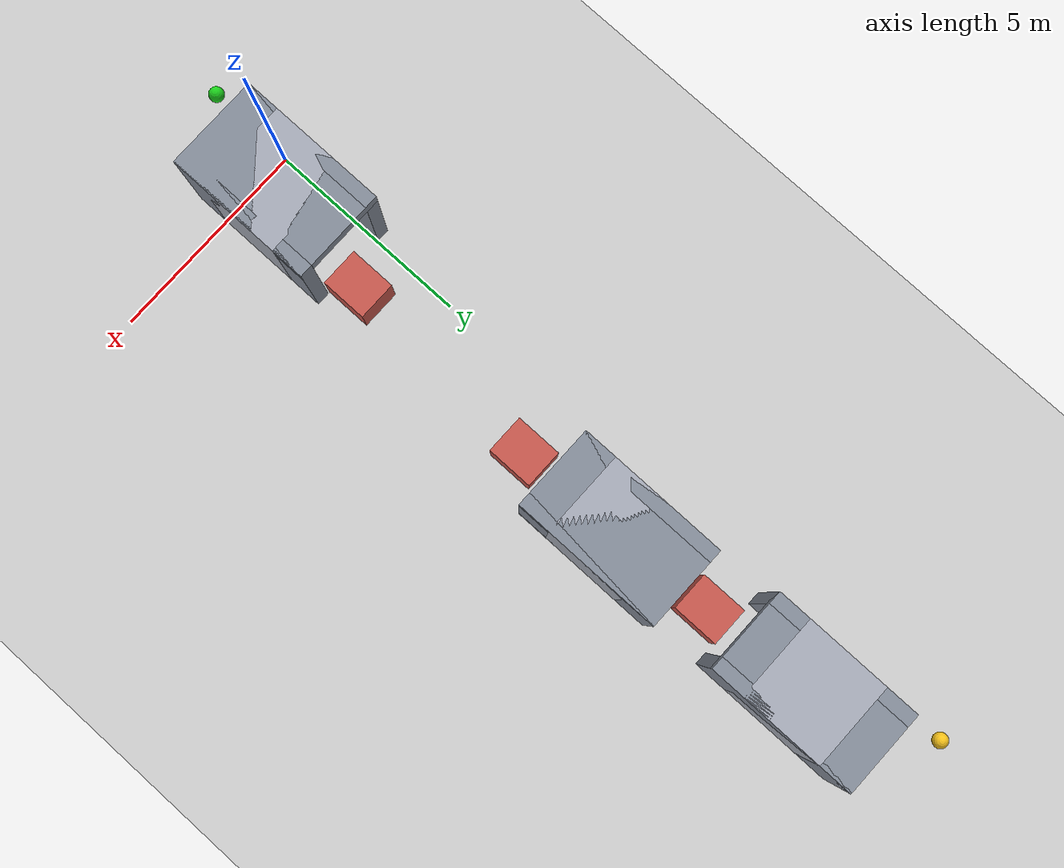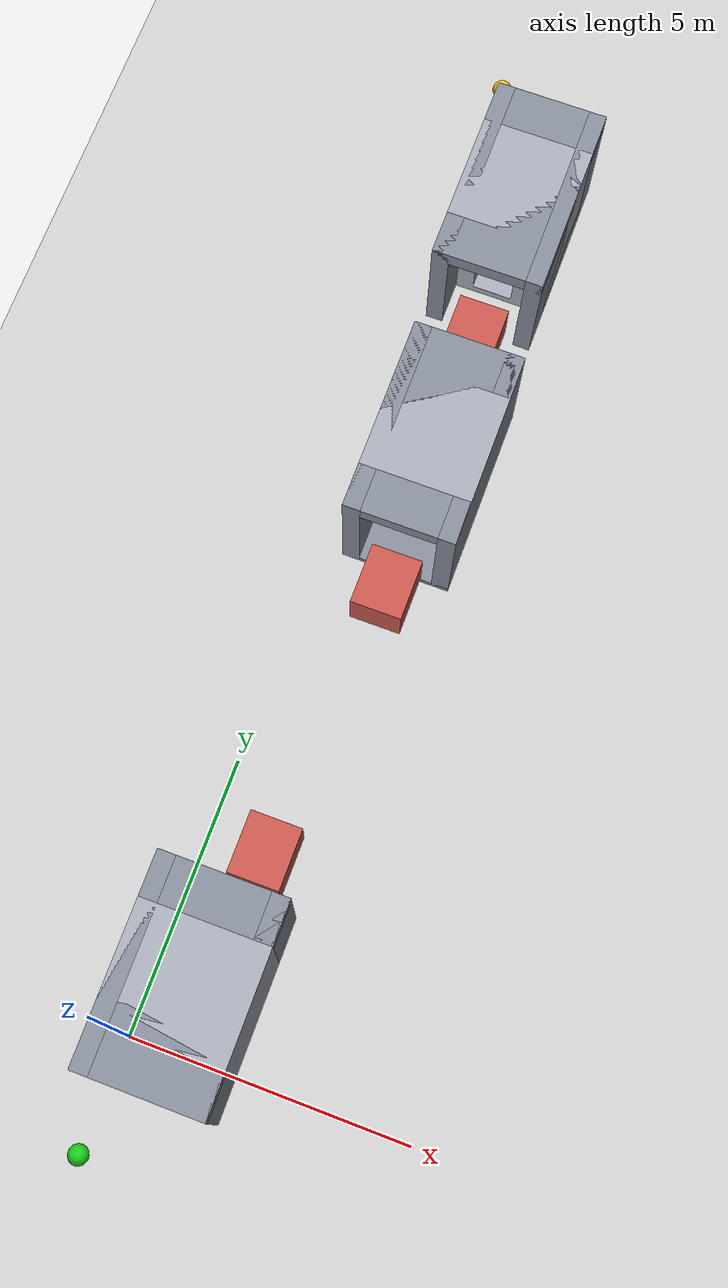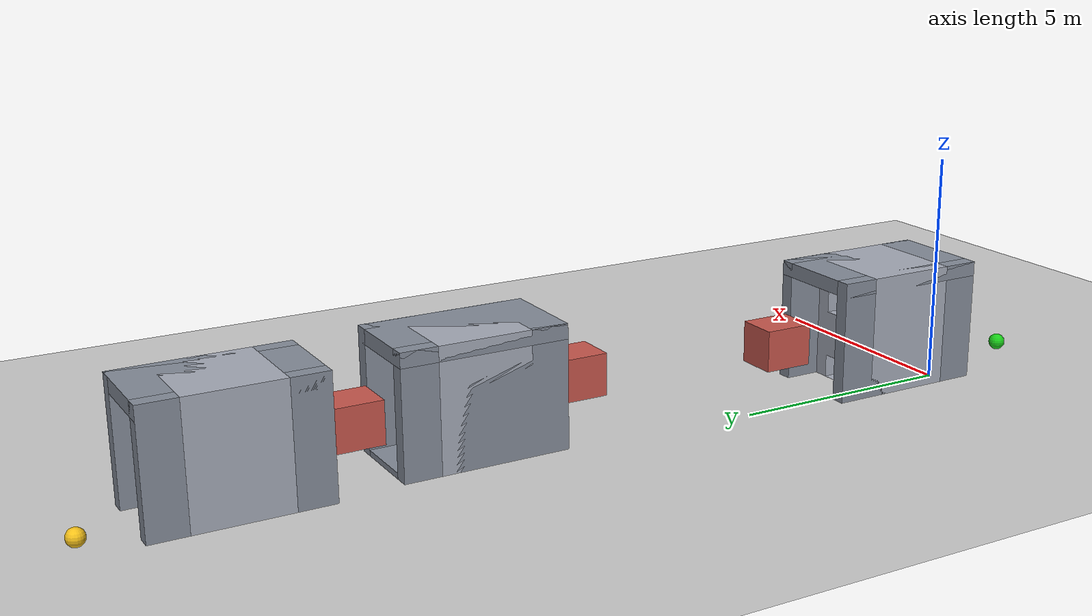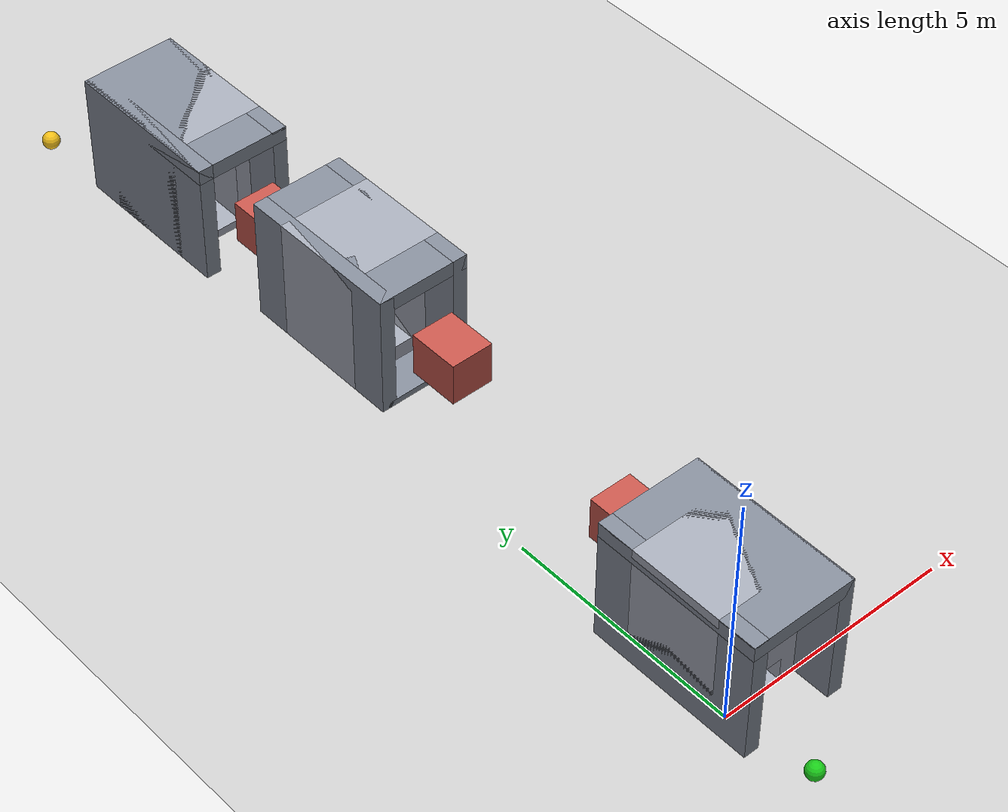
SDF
<sdf version="1.10">
 <world name="rl_enhanced_fixed_scene">
  <gravity>0 0 -9.8</gravity>
  <physics name="1ms" type="ignored">
   <max_step_size>0.001</max_step_size>
   <real_time_factor>1.0</real_time_factor>
  </physics>
  <plugin filename="gz-sim-physics-system" name="gz::sim::systems::Physics"/>
  <plugin filename="gz-sim-user-commands-system" name="gz::sim::systems::UserCommands"/>
  <plugin filename="gz-sim-scene-broadcaster-system" name="gz::sim::systems::SceneBroadcaster"/>
  <plugin filename="gz-sim-sensors-system" name="gz::sim::systems::Sensors"/>
  <light name="sun" type="directional">
   <pose>0 0 20 0 0 0</pose>
   <diffuse>0.9 0.9 0.9 1</diffuse>
   <specular>0.2 0.2 0.2 1</specular>
   <direction>-0.5 0.1 -0.9</direction>
  </light>
  <model name="ground_plane">
   <static>true</static>
   <link name="ground_link">
    <collision name="collision">
     <geometry><plane><normal>0 0 1</normal><size>80 80</size></plane></geometry>
    </collision>
    <visual name="visual">
     <geometry><plane><normal>0 0 1</normal><size>80 80</size></plane></geometry>
     <material><ambient>0.8 0.8 0.8 1</ambient><diffuse>0.8 0.8 0.8 1</diffuse></material>
    </visual>
   </link>
  </model>
  <model name="door1_wall">
   <static>true</static>
   <link name="link">
    <collision name="collision"><geometry><mesh><uri>../meshes/door1_wall.stl</uri></mesh></geometry></collision>
    <visual name="visual">
     <geometry><mesh><uri>../meshes/door1_wall.stl</uri></mesh></geometry>
     <material><ambient>0.65 0.67 0.72 1</ambient><diffuse>0.65 0.67 0.72 1</diffuse></material>
    </visual>
    <collision name="collision_left_mass">
     <pose>-0.190000 1.000000 1.000000 0 0 0</pose>
     <geometry><box><size>0.320000 3.600000 3.340000</size></box></geometry>
    </collision>
    <collision name="collision_right_mass">
     <pose>1.750000 1.000000 1.000000 0 0 0</pose>
     <geometry><box><size>0.320000 3.600000 3.340000</size></box></geometry>
    </collision>
    <collision name="collision_top_mass">
     <pose>0.780000 1.000000 2.510000 0 0 0</pose>
     <geometry><box><size>2.260000 3.600000 0.320000</size></box></geometry>
    </collision>
    <collision name="collision_bottom_mass">
     <pose>0.780000 1.000000 -0.510000 0 0 0</pose>
     <geometry><box><size>2.260000 3.600000 0.320000</size></box></geometry>
    </collision>
    <visual name="visual_left_mass">
     <pose>-0.190000 1.000000 1.000000 0 0 0</pose>
     <geometry><box><size>0.320000 3.600000 3.340000</size></box></geometry>
     <material><ambient>0.52 0.55 0.60 1</ambient><diffuse>0.52 0.55 0.60 1</diffuse></material>
    </visual>
    <visual name="visual_right_mass">
     <pose>1.750000 1.000000 1.000000 0 0 0</pose>
     <geometry><box><size>0.320000 3.600000 3.340000</size></box></geometry>
     <material><ambient>0.52 0.55 0.60 1</ambient><diffuse>0.52 0.55 0.60 1</diffuse></material>
    </visual>
    <visual name="visual_top_mass">
     <pose>0.780000 1.000000 2.510000 0 0 0</pose>
     <geometry><box><size>2.260000 3.600000 0.320000</size></box></geometry>
     <material><ambient>0.52 0.55 0.60 1</ambient><diffuse>0.52 0.55 0.60 1</diffuse></material>
    </visual>
    <visual name="visual_bottom_mass">
     <pose>0.780000 1.000000 -0.510000 0 0 0</pose>
     <geometry><box><size>2.260000 3.600000 0.320000</size></box></geometry>
     <material><ambient>0.52 0.55 0.60 1</ambient><diffuse>0.52 0.55 0.60 1</diffuse></material>
    </visual>
   </link>
  </model>
  <model name="door3_wall">
   <static>true</static>
   <link name="link">
    <collision name="collision"><geometry><mesh><uri>../meshes/door3_wall.stl</uri></mesh></geometry></collision>
    <visual name="visual">
     <geometry><mesh><uri>../meshes/door3_wall.stl</uri></mesh></geometry>
     <material><ambient>0.65 0.67 0.72 1</ambient><diffuse>0.65 0.67 0.72 1</diffuse></material>
    </visual>
    <collision name="collision_left_mass">
     <pose>0.520000 11.000000 1.208333 0 0 0</pose>
     <geometry><box><size>0.320000 3.600000 2.850000</size></box></geometry>
    </collision>
    <collision name="collision_right_mass">
     <pose>2.220000 11.000000 1.208333 0 0 0</pose>
     <geometry><box><size>0.320000 3.600000 2.850000</size></box></geometry>
    </collision>
    <collision name="collision_top_mass">
     <pose>1.370000 11.000000 2.473333 0 0 0</pose>
     <geometry><box><size>2.020000 3.600000 0.320000</size></box></geometry>
    </collision>
    <collision name="collision_bottom_mass">
     <pose>1.370000 11.000000 -0.056667 0 0 0</pose>
     <geometry><box><size>2.020000 3.600000 0.320000</size></box></geometry>
    </collision>
    <visual name="visual_left_mass">
     <pose>0.520000 11.000000 1.208333 0 0 0</pose>
     <geometry><box><size>0.320000 3.600000 2.850000</size></box></geometry>
     <material><ambient>0.52 0.55 0.60 1</ambient><diffuse>0.52 0.55 0.60 1</diffuse></material>
    </visual>
    <visual name="visual_right_mass">
     <pose>2.220000 11.000000 1.208333 0 0 0</pose>
     <geometry><box><size>0.320000 3.600000 2.850000</size></box></geometry>
     <material><ambient>0.52 0.55 0.60 1</ambient><diffuse>0.52 0.55 0.60 1</diffuse></material>
    </visual>
    <visual name="visual_top_mass">
     <pose>1.370000 11.000000 2.473333 0 0 0</pose>
     <geometry><box><size>2.020000 3.600000 0.320000</size></box></geometry>
     <material><ambient>0.52 0.55 0.60 1</ambient><diffuse>0.52 0.55 0.60 1</diffuse></material>
    </visual>
    <visual name="visual_bottom_mass">
     <pose>1.370000 11.000000 -0.056667 0 0 0</pose>
     <geometry><box><size>2.020000 3.600000 0.320000</size></box></geometry>
     <material><ambient>0.52 0.55 0.60 1</ambient><diffuse>0.52 0.55 0.60 1</diffuse></material>
    </visual>
   </link>
  </model>
  <model name="door4_wall">
   <static>true</static>
   <link name="link">
    <collision name="collision"><geometry><mesh><uri>../meshes/door4_wall.stl</uri></mesh></geometry></collision>
    <visual name="visual">
     <geometry><mesh><uri>../meshes/door4_wall.stl</uri></mesh></geometry>
     <material><ambient>0.65 0.67 0.72 1</ambient><diffuse>0.65 0.67 0.72 1</diffuse></material>
    </visual>
    <collision name="collision_left_mass">
     <pose>0.335000 16.000000 1.050000 0 0 0</pose>
     <geometry><box><size>0.320000 3.600000 3.100000</size></box></geometry>
    </collision>
    <collision name="collision_right_mass">
     <pose>2.065000 16.000000 1.050000 0 0 0</pose>
     <geometry><box><size>0.320000 3.600000 3.100000</size></box></geometry>
    </collision>
    <collision name="collision_top_mass">
     <pose>1.200000 16.000000 2.440000 0 0 0</pose>
     <geometry><box><size>2.050000 3.600000 0.320000</size></box></geometry>
    </collision>
    <collision name="collision_bottom_mass">
     <pose>1.200000 16.000000 -0.340000 0 0 0</pose>
     <geometry><box><size>2.050000 3.600000 0.320000</size></box></geometry>
    </collision>
    <visual name="visual_left_mass">
     <pose>0.335000 16.000000 1.050000 0 0 0</pose>
     <geometry><box><size>0.320000 3.600000 3.100000</size></box></geometry>
     <material><ambient>0.52 0.55 0.60 1</ambient><diffuse>0.52 0.55 0.60 1</diffuse></material>
    </visual>
    <visual name="visual_right_mass">
     <pose>2.065000 16.000000 1.050000 0 0 0</pose>
     <geometry><box><size>0.320000 3.600000 3.100000</size></box></geometry>
     <material><ambient>0.52 0.55 0.60 1</ambient><diffuse>0.52 0.55 0.60 1</diffuse></material>
    </visual>
    <visual name="visual_top_mass">
     <pose>1.200000 16.000000 2.440000 0 0 0</pose>
     <geometry><box><size>2.050000 3.600000 0.320000</size></box></geometry>
     <material><ambient>0.52 0.55 0.60 1</ambient><diffuse>0.52 0.55 0.60 1</diffuse></material>
    </visual>
    <visual name="visual_bottom_mass">
     <pose>1.200000 16.000000 -0.340000 0 0 0</pose>
     <geometry><box><size>2.050000 3.600000 0.320000</size></box></geometry>
     <material><ambient>0.52 0.55 0.60 1</ambient><diffuse>0.52 0.55 0.60 1</diffuse></material>
    </visual>
   </link>
  </model>
  <model name="mid_obs_0">
   <static>true</static>
   <pose>1.136000 3.500000 1.065000 0 0 0</pose>
   <link name="link">
    <collision name="collision">
     <geometry><box><size>0.920000 1.100000 0.920000</size></box></geometry>
    </collision>
    <visual name="visual">
     <geometry><box><size>0.920000 1.100000 0.920000</size></box></geometry>
     <material><ambient>0.78 0.34 0.30 1</ambient><diffuse>0.78 0.34 0.30 1</diffuse></material>
    </visual>
   </link>
  </model>
  <model name="mid_obs_1">
   <static>true</static>
   <pose>1.431000 8.500000 1.169167 0 0 0</pose>
   <link name="link">
    <collision name="collision">
     <geometry><box><size>0.920000 1.100000 0.920000</size></box></geometry>
    </collision>
    <visual name="visual">
     <geometry><box><size>0.920000 1.100000 0.920000</size></box></geometry>
     <material><ambient>0.78 0.34 0.30 1</ambient><diffuse>0.78 0.34 0.30 1</diffuse></material>
    </visual>
   </link>
  </model>
  <model name="mid_obs_2">
   <static>true</static>
   <pose>1.285000 13.500000 1.129167 0 0 0</pose>
   <link name="link">
    <collision name="collision">
     <geometry><box><size>0.920000 1.100000 0.920000</size></box></geometry>
    </collision>
    <visual name="visual">
     <geometry><box><size>0.920000 1.100000 0.920000</size></box></geometry>
     <material><ambient>0.78 0.34 0.30 1</ambient><diffuse>0.78 0.34 0.30 1</diffuse></material>
    </visual>
   </link>
  </model>
  <model name="start_marker">
   <static>true</static>
   <pose>0.000000 -2.000000 0.500000 0 0 0</pose>
   <link name="link">
    <visual name="visual">
     <geometry><sphere><radius>0.18</radius></sphere></geometry>
     <material><ambient>0.1 0.8 0.1 1</ambient><diffuse>0.1 0.8 0.1 1</diffuse></material>
    </visual>
   </link>
  </model>
  <model name="goal_marker">
   <static>true</static>
   <pose>0.000000 19.000000 0.500000 0 0 0</pose>
   <link name="link">
    <visual name="visual">
     <geometry><sphere><radius>0.18</radius></sphere></geometry>
     <material><ambient>0.95 0.75 0.1 1</ambient><diffuse>0.95 0.75 0.1 1</diffuse></material>
    </visual>
   </link>
  </model>
 </world>
</sdf>
